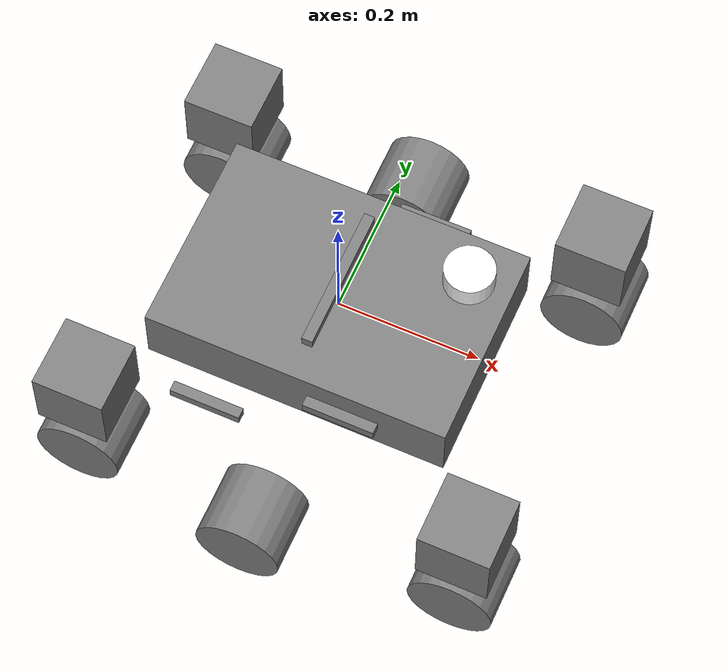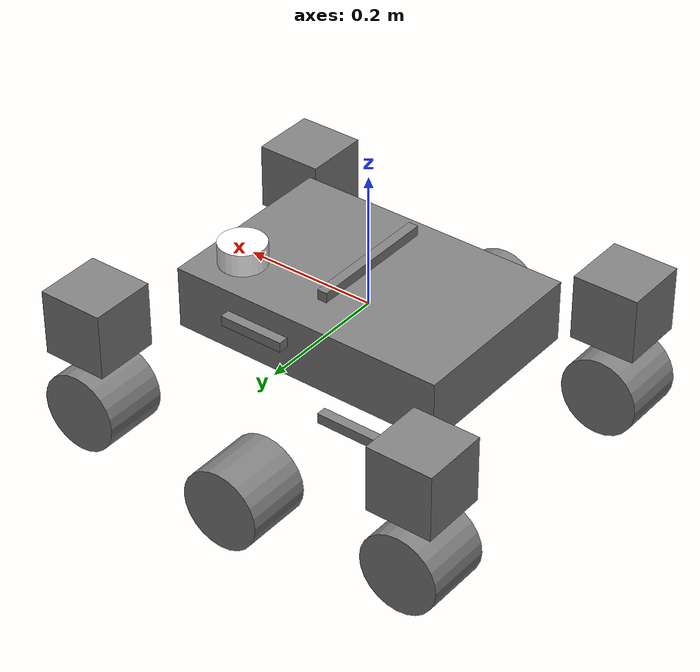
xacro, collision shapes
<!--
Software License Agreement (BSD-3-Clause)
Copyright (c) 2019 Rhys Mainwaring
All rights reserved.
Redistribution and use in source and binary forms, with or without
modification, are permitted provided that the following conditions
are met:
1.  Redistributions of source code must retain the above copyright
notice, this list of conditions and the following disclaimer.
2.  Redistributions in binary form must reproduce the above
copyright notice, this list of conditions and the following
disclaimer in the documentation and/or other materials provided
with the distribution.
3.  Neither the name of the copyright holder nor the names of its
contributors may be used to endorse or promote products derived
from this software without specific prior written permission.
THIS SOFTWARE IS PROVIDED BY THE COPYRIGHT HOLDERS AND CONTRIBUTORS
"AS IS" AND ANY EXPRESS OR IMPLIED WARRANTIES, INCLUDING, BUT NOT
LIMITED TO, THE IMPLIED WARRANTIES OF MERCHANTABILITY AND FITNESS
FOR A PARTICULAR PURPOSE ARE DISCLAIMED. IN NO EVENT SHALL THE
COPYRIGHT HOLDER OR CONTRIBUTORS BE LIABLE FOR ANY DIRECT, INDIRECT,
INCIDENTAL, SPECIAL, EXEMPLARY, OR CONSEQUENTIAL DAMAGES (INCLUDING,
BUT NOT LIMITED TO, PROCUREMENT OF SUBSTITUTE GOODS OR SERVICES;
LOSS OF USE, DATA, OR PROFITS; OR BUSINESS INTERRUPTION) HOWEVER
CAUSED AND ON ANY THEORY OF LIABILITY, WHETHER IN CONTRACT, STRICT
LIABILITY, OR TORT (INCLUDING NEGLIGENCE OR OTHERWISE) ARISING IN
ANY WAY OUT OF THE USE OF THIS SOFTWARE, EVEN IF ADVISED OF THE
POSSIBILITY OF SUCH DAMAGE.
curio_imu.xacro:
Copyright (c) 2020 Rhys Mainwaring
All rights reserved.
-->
<?xml version="1.0" ?>

<!-- Robot description for Curio, a Sawppy Rover robot.

 -->
<robot name="curio" xmlns:xacro="http://ros.org/wiki/xacro">
    <!-- Include macros for materials, inertials, sensors -->
    <xacro:include filename="$(find curio_description)/urdf/curio_materials.xacro"/>
    <xacro:include filename="$(find curio_description)/urdf/curio_inertials.xacro"/>
    <xacro:include filename="$(find curio_description)/urdf/curio_imu.xacro"/>
    <xacro:include filename="$(find curio_description)/urdf/curio_laser.xacro"/>

    <!-- Gazebo plugins -->
    <gazebo>
        <plugin name="gazebo_ros_control" filename="libgazebo_ros_control.so">
            <robotNamespace>/</robotNamespace>
            <robotSimType>gazebo_ros_control/DefaultRobotHWSim</robotSimType>
            <legacyModeNS>false</legacyModeNS>
        </plugin>

        <plugin name="gazebo_ros_joint_state_publisher" filename="libgazebo_ros_joint_state_publisher.so">
            <robotNamespace>/</robotNamespace>
            <jointName>
                left_rocker_joint, right_rocker_joint,
                left_bogie_joint, right_bogie_joint,
                diff_brace_joint,
                back_left_turnbuckle_joint, back_right_turnbuckle_joint,
                front_left_turnbuckle_joint, front_right_turnbuckle_joint
            </jointName>
            <updateRate>50</updateRate>
            <alwaysOn>true</alwaysOn>
        </plugin>
    </gazebo>

    <!-- Chassis -->
    <xacro:property name="makerbeam_width" value="0.015" />
    <xacro:property name="makerbeam_depth" value="0.015" />
    <xacro:property name="makerbeam_density" value="0.100" />

    <xacro:property name="body_box_length" value="0.425" />
    <xacro:property name="body_box_width" value="0.285" />
    <xacro:property name="body_box_depth" value="0.093" />
    <xacro:property name="body_box_mass" value="1.0" />

    <xacro:property name="front_rocker_arm_length" value="0.182" />
    <xacro:property name="back_rocker_arm_length" value="0.161" />
    <xacro:property name="front_rocker_arm_angle" value="0.3490658503988659" />
    <xacro:property name="back_rocker_arm_angle" value="-0.3141592653589793" />

    <xacro:property name="front_bogie_arm_length" value="0.122" />
    <xacro:property name="back_bogie_arm_length" value="0.117" />
    <xacro:property name="front_bogie_arm_angle" value="0.5201081170943103" />
    <xacro:property name="back_bogie_arm_angle" value="0.25656340004316625" />

    <xacro:property name="wheel_width" value="0.100" />
    <xacro:property name="wheel_radius" value="0.060" />

    <!-- The base link - the reference link for the entire model -->
    <link name="base_link">
        <visual>
            <origin rpy="0 0 0" xyz="0 0 0" />
            <geometry>
                <box size="0.01 0.01 0.01"/>
            </geometry>
            <material name="orange" />
        </visual>
        <collision>
            <origin rpy="0 0 0" xyz="0 0 0" />
            <geometry>
                <box size="0.01 0.01 0.01"/>
            </geometry>
        </collision>
        <xacro:solid_cuboid_inertial
            rpy="0 0 0" xyz="0 0 0"
            mass="0.01"
            x="0.01" y="0.01" z="0.01" />
    </link>

    <gazebo reference="base_link">
        <material>Gazebo/Orange</material>
    </gazebo>

    <link name="body_box_link">
        <visual>
            <origin rpy="0 0 0" xyz="0 0 0" />
            <geometry>
                <mesh filename="package://curio_description/meshes/bases/body_box.stl" />
            </geometry>
            <material name="dark_gray" />
        </visual>
        <collision>
            <origin rpy="0 0 0" xyz="0 0 0" />
            <geometry>
                <box size="${body_box_length} ${body_box_width} ${body_box_depth}"/>
            </geometry>
        </collision>
        <xacro:solid_cuboid_inertial
            rpy="0 0 0" xyz="0 0 0"
            mass="${body_box_mass}"
            x="${body_box_length}" y="${body_box_width}" z="${body_box_depth}" />
    </link>

    <gazebo reference="body_box_link">
        <material>Gazebo/DarkGray</material>
    </gazebo>

    <joint name="body_box_joint" type="fixed">
        <origin rpy="0 0 0" xyz="0 0 0"/>
        <parent link="base_link" />
        <child link="body_box_link" />
    </joint>

    <gazebo reference="body_box_joint">
    </gazebo>

    <!-- Differential -->
    <link name="diff_brace_link">
        <visual>
            <origin rpy="0 0 0" xyz="0 0 0" />
            <geometry>
                <mesh filename="package://curio_description/meshes/bases/differential.stl" />
            </geometry>
            <material name="dark_gray" />
        </visual>
        <collision>
            <origin rpy="0 0 ${math_pi_over_2}" xyz="0 0 0" />
            <geometry>
                <box size="0.200 0.015 0.015"/>
            </geometry>
        </collision>
        <xacro:solid_cuboid_inertial
            rpy="0 0 ${math_pi_over_2}" xyz="0 0 0"
            mass="0.1"
            x="0.2" y="0.015" z="0.015" />
    </link>

    <gazebo reference="diff_brace_link">
        <material>Gazebo/DarkGray</material>
    </gazebo>

    <joint name="diff_brace_joint" type="revolute">
        <origin rpy="0 0 0" xyz="0 0 0.0681"/>
        <axis xyz="0 0 1" />
        <limit
            lower="${-math_pi_over_4}"
            upper="${math_pi_over_4}"
            effort="100.0"
            velocity="100.0" />
        <parent link="base_link" />
        <child link="diff_brace_link" />
    </joint>

    <gazebo reference="diff_brace_joint">
        <provideFeedback>true</provideFeedback>
        <implicitSpringDamper>true</implicitSpringDamper>
    </gazebo>

    <xacro:macro name="turnbuckle_assembly" params="lat_label reflect">
        <gazebo>
            <link name="${lat_label}_turnbuckle_link">
                <pose>0.035 ${reflect * 0.17} 0.07 0 0 0</pose>
                <visual name="${lat_label}_turnbuckle_visual">
                    <pose>0 0 0 0 0 0</pose>
                    <geometry>
                        <mesh>
                            <uri>package://curio_description/meshes/bases/turnbuckle.stl</uri>
                        </mesh>
                    </geometry>
                    <material>
                        <script>
                            <name>Gazebo/Blue</name>
                        </script>
                    </material>
                </visual>
                <collision name="${lat_label}_turnbuckle_collision">
                    <pose>0 0 0 0 ${math_pi_over_2} 0</pose>
                    <geometry>
                        <cylinder>
                            <length>0.07</length>
                            <radius>0.0025</radius>
                        </cylinder>
                    </geometry>
                </collision>
                <inertial>
                    <mass>0.01</mass>
                    <inertia>
                        <ixx>0.0001</ixx>
                        <ixy>0</ixy>
                        <ixz>0</ixz>
                        <iyy>0.0001</iyy>
                        <iyz>0</iyz>
                        <izz>0.0001</izz>
                    </inertia>
                </inertial>
            </link>

            <joint name="back_${lat_label}_turnbuckle_joint" type="ball">
                <pose>-0.035 0 0 0 0 0</pose>
                <parent>diff_brace_link</parent>
                <child>${lat_label}_turnbuckle_link</child>
            </joint>

            <joint name="front_${lat_label}_turnbuckle_joint" type="ball">
                <pose>0.035 0 0 0 0 0</pose>
                <parent>${lat_label}_rocker_link</parent>
                <child>${lat_label}_turnbuckle_link</child>
            </joint>
        </gazebo>
    </xacro:macro>
    <xacro:turnbuckle_assembly lat_label="left" reflect="1"/>
    <xacro:turnbuckle_assembly lat_label="right" reflect="-1"/>

    <!-- Rocker -->
    <xacro:macro name="rocker_link" params="lat_label reflect">
        <link name="${lat_label}_rocker_link">
            <visual>
                <origin rpy="0 0 0" xyz="0 0 0" />
                <geometry>
                    <mesh filename="package://curio_description/meshes/bases/${lat_label}_rocker_asm.stl" />
                </geometry>
                <material name="dark_gray" />
            </visual>
            <collision>
                <origin rpy="0 0 0" xyz="0 0 0" />
                <geometry>
                    <box size="0.1 0.015 0.015"/>
                </geometry>
            </collision>
            <xacro:solid_cuboid_inertial
                rpy="0 0 0" xyz="0 0 0"
                mass="0.25"
                x="0.1" y="0.015" z="0.015" />
        </link>

        <gazebo reference="${lat_label}_rocker_link">
            <material>Gazebo/DarkGray</material>
        </gazebo>

    </xacro:macro>
    <xacro:rocker_link lat_label="left" reflect="1"/>
    <xacro:rocker_link lat_label="right" reflect="-1"/>

    <!-- Rocker Joint  -->
    <xacro:macro name="rocker_joint" params="lat_label reflect">
        <joint name="${lat_label}_rocker_joint" type="continuous">
            <origin rpy="0 0 0" xyz="0.071 ${reflect * 0.155} 0.0118"/>
            <axis xyz="0 1 0" />
            <limit
                lower="${-math_pi_over_4}"
                upper="${math_pi_over_4}"
                effort="100.0"
                velocity="100.0" />
            <parent link="base_link" />
            <child link="${lat_label}_rocker_link" />
        </joint>

        <gazebo reference="${lat_label}_rocker_joint">
            <provideFeedback>true</provideFeedback>
            <implicitSpringDamper>true</implicitSpringDamper>
        </gazebo>
    </xacro:macro>
    <!-- Fixed Rocker Joint (for testing)  -->
    <xacro:rocker_joint lat_label="left" reflect="1"/>
    <xacro:rocker_joint lat_label="right" reflect="-1"/>

    <xacro:macro name="steer_link" params="lon_label lat_label reflect">
        <link name="${lon_label}_${lat_label}_steer_link">
            <visual>
                <origin rpy="0 0 0" xyz="0 0 0" />
                <geometry>
                    <mesh filename="package://curio_description/meshes/bases/${lon_label}_${lat_label}_steering_asm.stl" />
                </geometry>
                <material name="dark_gray" />
            </visual>
            <collision>
                <origin rpy="0 0 0" xyz="0 0 0" />
                <geometry>
                    <box size="0.1 0.1 0.1"/>
                </geometry>
            </collision>
            <xacro:solid_cuboid_inertial
                rpy="0 0 0" xyz="0 0 0"
                mass="0.25"
                x="0.1" y="0.1" z="0.1" />
        </link>

        <gazebo reference="${lon_label}_${lat_label}_steer_link">
            <material>Gazebo/DarkGray</material>
        </gazebo>
    </xacro:macro>
    <xacro:steer_link lon_label="front" lat_label="left" reflect="1"/>
    <xacro:steer_link lon_label="front" lat_label="right" reflect="-1"/>

    <xacro:macro name="front_steer_joint" params="lat_label reflect">
        <joint name="front_${lat_label}_steer_joint" type="continuous">
            <origin rpy="0 0 0" xyz="0.2116 ${reflect * 0.075} -0.0279"/>
            <axis xyz="0 0 1" />
            <parent link="${lat_label}_rocker_link" />
            <child link="front_${lat_label}_steer_link" />
        </joint>

        <transmission name="front_${lat_label}_steer_transmission" >
            <type>transmission_interface/SimpleTransmission</type>
            <actuator name="front_${lat_label}_steer_actuator">
                <mechanicalReduction>1</mechanicalReduction>
            </actuator>
            <joint name="front_${lat_label}_steer_joint">
                <hardwareInterface>hardware_interface/PositionJointInterface</hardwareInterface>
            </joint>
        </transmission>

        <gazebo reference="front_${lat_label}_steer_joint">
            <provideFeedback>true</provideFeedback>
        </gazebo>
    </xacro:macro>
    <xacro:front_steer_joint lat_label="left" reflect="1"/>
    <xacro:front_steer_joint lat_label="right" reflect="-1"/>

    <xacro:macro name="wheel_link" params="lon_label lat_label reflect">
        <link name="${lon_label}_${lat_label}_wheel_link">
            <visual>
                <origin rpy="${reflect * math_pi_over_2} 0 0" xyz="0 0 0" />
                <geometry>
                    <mesh filename="package://curio_description/meshes/wheels/wheel_asm.stl" />
                </geometry>
                <material name="dark_gray" />
            </visual>
            <collision>
                <origin rpy="${reflect * math_pi_over_2} 0 0" xyz="0 0 0" />
                <geometry>
                    <cylinder length="${wheel_width}" radius="${wheel_radius}" />
                </geometry>
            </collision>
            <xacro:solid_cylinder_inertial
                rpy="0 0 0" xyz="0 0 0"
                mass="0.25"
                radius="${wheel_radius}" length="${wheel_width}" />
        </link>

        <gazebo reference="${lon_label}_${lat_label}_wheel_link">
            <material>Gazebo/DarkGray</material>
        </gazebo>
    </xacro:macro>
    <xacro:wheel_link lon_label="front" lat_label="left" reflect="1"/>
    <xacro:wheel_link lon_label="front" lat_label="right" reflect="-1"/>

    <xacro:macro name="steer_wheel_joint" params="lon_label lat_label reflect">
        <joint name="${lon_label}_${lat_label}_wheel_joint" type="continuous">
            <origin rpy="0 0 0" xyz="0 0 -0.132"/>
            <axis xyz="0 1 0" />
            <parent link="${lon_label}_${lat_label}_steer_link" />
            <child link="${lon_label}_${lat_label}_wheel_link" />
        </joint>

        <transmission name="${lon_label}_${lat_label}_wheel_transmission" >
            <type>transmission_interface/SimpleTransmission</type>
            <actuator name="${lon_label}_${lat_label}_wheel_actuator">
                <mechanicalReduction>1</mechanicalReduction>
            </actuator>
            <joint name="${lon_label}_${lat_label}_wheel_joint">
                <hardwareInterface>hardware_interface/VelocityJointInterface</hardwareInterface>
            </joint>
        </transmission>

        <gazebo reference="${lon_label}_${lat_label}_wheel_joint">
            <provideFeedback>true</provideFeedback>
        </gazebo>
    </xacro:macro>
    <xacro:steer_wheel_joint lon_label="front" lat_label="left" reflect="1"/>
    <xacro:steer_wheel_joint lon_label="front" lat_label="right" reflect="-1"/>

    <!-- Bogie -->
    <xacro:macro name="bogie_link" params="lat_label reflect">
        <link name="${lat_label}_bogie_link">
            <visual>
                <origin rpy="0 0 0" xyz="0 0 0" />
                <geometry>
                    <mesh filename="package://curio_description/meshes/bases/${lat_label}_bogie_asm.stl" />
                </geometry>
                <material name="dark_gray" />
            </visual>
            <collision>
                <origin rpy="0 0 0" xyz="0 0 0" />
                <geometry>
                    <box size="0.1 0.015 0.015"/>
                </geometry>
            </collision>
            <xacro:solid_cuboid_inertial
                rpy="0 0 0" xyz="0 0 0"
                mass="0.25"
                x="0.1" y="0.015" z="0.015" />
        </link>

        <gazebo reference="${lat_label}_bogie_link">
            <material>Gazebo/DarkGray</material>
        </gazebo>
    </xacro:macro>
    <xacro:bogie_link lat_label="left" reflect="1"/>
    <xacro:bogie_link lat_label="right" reflect="-1"/>

    <!-- Bogie Joint  -->
    <xacro:macro name="bogie_joint" params="lat_label reflect">
        <joint name="${lat_label}_bogie_joint" type="revolute">
            <origin rpy="0 0 0" xyz="-0.181 ${reflect * 0.025} -0.062"/>
            <axis xyz="0 1 0" />
            <limit
                lower="${-math_pi_over_4}"
                upper="${math_pi_over_4}"
                effort="100.0"
                velocity="100.0" />
            <parent link="${lat_label}_rocker_link" />
            <child link="${lat_label}_bogie_link" />
        </joint>

        <gazebo reference="${lat_label}_bogie_joint">
            <provideFeedback>true</provideFeedback>
            <implicitSpringDamper>true</implicitSpringDamper>
        </gazebo>
    </xacro:macro>
    <!-- Fixed Bogie Joint  (for testing) -->
    <xacro:bogie_joint lat_label="left" reflect="1"/>
    <xacro:bogie_joint lat_label="right" reflect="-1"/>

    <xacro:wheel_link lon_label="mid" lat_label="left" reflect="1"/>
    <xacro:wheel_link lon_label="mid" lat_label="right" reflect="-1"/>

    <xacro:macro name="mid_wheel_joint" params="lat_label reflect">
        <joint name="mid_${lat_label}_wheel_joint" type="continuous">
            <origin rpy="0 0 0" xyz="0.1063 ${reflect * 0.0929} -0.0959"/>
            <axis xyz="0 1 0" />
            <parent link="${lat_label}_bogie_link" />
            <child link="mid_${lat_label}_wheel_link" />
        </joint>

        <transmission name="mid_${lat_label}_wheel_transmission" >
            <type>transmission_interface/SimpleTransmission</type>
            <actuator name="mid_${lat_label}_wheel_actuator">
                <mechanicalReduction>1</mechanicalReduction>
            </actuator>
            <joint name="mid_${lat_label}_wheel_joint">
                <hardwareInterface>hardware_interface/VelocityJointInterface</hardwareInterface>
            </joint>
        </transmission>

        <gazebo reference="mid_${lat_label}_wheel_joint">
            <provideFeedback>true</provideFeedback>
        </gazebo>
    </xacro:macro>
    <xacro:mid_wheel_joint lat_label="left" reflect="1"/>
    <xacro:mid_wheel_joint lat_label="right" reflect="-1"/>

    <xacro:steer_link lon_label="back" lat_label="left" reflect="1"/>
    <xacro:steer_link lon_label="back" lat_label="right" reflect="-1"/>

    <xacro:macro name="back_steer_joint" params="lat_label reflect">
        <joint name="back_${lat_label}_steer_joint" type="continuous">
            <origin rpy="0 0 0" xyz="-0.149 ${reflect * 0.05} 0.0338"/>
            <axis xyz="0 0 1" />
            <parent link="${lat_label}_bogie_link" />
            <child link="back_${lat_label}_steer_link" />
        </joint>

        <transmission name="back_${lat_label}_steer_transmission" >
            <type>transmission_interface/SimpleTransmission</type>
            <actuator name="back_${lat_label}_steer_actuator">
                <mechanicalReduction>1</mechanicalReduction>
            </actuator>
            <joint name="back_${lat_label}_steer_joint">
                <hardwareInterface>hardware_interface/PositionJointInterface</hardwareInterface>
            </joint>
        </transmission>

        <gazebo reference="back_${lat_label}_steer_joint">
            <provideFeedback>true</provideFeedback>
        </gazebo>
    </xacro:macro>
    <xacro:back_steer_joint lat_label="left" reflect="1"/>
    <xacro:back_steer_joint lat_label="right" reflect="-1"/>

    <xacro:wheel_link lon_label="back" lat_label="left" reflect="1"/>
    <xacro:wheel_link lon_label="back" lat_label="right" reflect="-1"/>

    <xacro:steer_wheel_joint lon_label="back" lat_label="left" reflect="1"/>
    <xacro:steer_wheel_joint lon_label="back" lat_label="right" reflect="-1"/>

    <!-- IMU  -->
    <xacro:imu_link />
    <xacro:imu_joint x="0.110" y="-0.043" z="0.005" yaw="0" />

    <!-- Laser Scan Sensor -->
    <xacro:laser_link />
    <xacro:laser_joint x="0.152" y="0.078" z="0.050" />

</robot>

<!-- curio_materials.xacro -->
<!--  xacro macros for robot materials.
 -->
<robot name="curio_materials" xmlns:xacro="http://ros.org/wiki/xacro">
   <material name="red">
        <color rgba="0.8 0 0 1"/>
    </material>

    <material name="green">
        <color rgba="0 0.8 0 1"/>
    </material>

    <material name="blue">
        <color rgba="0 0 0.8 1"/>
    </material>

    <material name="orange">
        <color rgba="0.8 0.25 0 1"/>
    </material>

    <material name="black">
        <color rgba="0 0 0 1"/>
    </material>

    <material name="dark_gray">
        <color rgba="0.5 0.5 0.5 1"/>
    </material>

    <material name="gray">
        <color rgba="0.753 0.753 0.753 1"/>
    </material>

    <material name="silver">
        <color rgba="0.88 0.88 0.88 1"/>
    </material>

    <material name="white">
        <color rgba="1 1 1 1"/>
    </material>
</robot>

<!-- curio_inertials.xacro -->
<!--  xacro macros for intertials.

    Define xacro macros for math constants and inertials:

    - solid cuboid
    - solid cylinder
    - null (a placeholder inertial for logical link elements)
 -->
<robot name="curio_inertials" xmlns:xacro="http://ros.org/wiki/xacro">

    <!-- Math constants -->
    <xacro:property name="math_pi"        value="3.141592653589793" />
    <xacro:property name="math_pi_over_2" value="1.5707963267948966" />
    <xacro:property name="math_pi_over_4" value="0.785398163397448" />

    <!-- Inertial for solid cuboid with dimensions x y z  -->
    <xacro:macro name="solid_cuboid_inertial" params="rpy xyz mass x y z">
        <inertial>
            <origin rpy="${rpy}" xyz="${xyz}"/>
            <mass value="${mass}" />
            <inertia
                ixx="${mass * (y * y + z * z) / 12.0}" ixy="0.0" ixz="0.0"
                iyy="${mass * (x * x + z * z) / 12.0}" iyz="0.0"
                izz="${mass * (x * x + y * y) / 12.0}" />
        </inertial>
    </xacro:macro>

    <!-- Inertial for solid cylinder with radius and length aligned to z-axis  -->
    <xacro:macro name="solid_cylinder_inertial" params="rpy xyz mass radius length">
        <inertial>
            <origin rpy="${rpy}" xyz="${xyz}"/>
            <mass value="${mass}" />
            <inertia
                ixx="${mass * (3.0 * radius * radius + length * length) / 12.0}" ixy="0.0" ixz="0.0"
                iyy="${mass * (3.0 * radius * radius + length * length) / 12.0}" iyz="0.0"
                izz="${mass * (radius * radius) / 2.0}" />
        </inertial>
    </xacro:macro>

    <!-- A null inertial - used in placeholder links to esure the model will work in Gazebo -->
    <xacro:macro name="null_inertial">
        <inertial>
            <mass value="0.001"/>
            <inertia ixx="0.001" ixy="0" ixz="0" iyy="0.001" iyz="0" izz="0.001"/>
        </inertial>
    </xacro:macro>
</robot>

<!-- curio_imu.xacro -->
<!--  xacro macros for IMU sensor (dimensions for SparkFun BNO080).

 -->
<robot name="curio_imu" xmlns:xacro="http://ros.org/wiki/xacro">
    <xacro:macro name="imu_link">
        <link name="imu">
            <visual>
                <origin rpy="0 0 0" xyz="0 0 0" />
                <geometry>
                    <box size="0.031 0.026 0.005"/>
                </geometry>
                <material name="green" />
            </visual>
            <collision>
                <origin rpy="0 0 0" xyz="0 0 0" />
                <geometry>
                    <box size="0.031 0.026 0.005"/>
                </geometry>
            </collision>
            <xacro:solid_cuboid_inertial rpy="0 0 0" xyz="0 0 0"
                mass="0.004" x="0.031" y="0.026" z="0.005" />
        </link>

        <gazebo reference="imu">
            <material>Gazebo/Green</material>

            <sensor type="imu" name="imu_sensor">
                <always_on>true</always_on>
                <update_rate>50</update_rate>
                <visualize>true</visualize>
                <topic>sensors/imu</topic>
                <pose>0 0 0 0 0 0</pose>
                <imu>
                    <topic>sensors/imu</topic>
                </imu>
                <plugin filename="libgazebo_ros_imu_sensor.so" name="imu_plugin">
                    <gaussianNoise>0.0</gaussianNoise>
                    <always_on>true</always_on>
                    <updateRateHz>50</updateRateHz>
                    <topicName>sensors/imu</topicName>
                    <frameName>imu</frameName>
                    <bodyName>imu</bodyName>
                    <xyzOffset>0 0 0</xyzOffset>
                    <rpyOffset>0 0 0</rpyOffset>
                </plugin>
            </sensor>
        </gazebo>
    </xacro:macro>

    <xacro:macro name="imu_joint" params="x y z yaw" >
        <joint name="imu_joint" type="fixed">
            <origin rpy="0 0 ${yaw}" xyz="${x} ${y} ${z}"/>
            <parent link="base_link" />
            <child link="imu" />
        </joint>

        <gazebo reference="imu_joint">
            <preserveFixedJoint>true</preserveFixedJoint>
        </gazebo>
    </xacro:macro>
</robot>

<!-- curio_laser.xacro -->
<!--  xacro macros for laser sensor (rplidar_a1).

 -->
<robot name="curio_laser" xmlns:xacro="http://ros.org/wiki/xacro">
    <xacro:macro name="laser_link">
        <link name="laser">
            <visual>
                <origin rpy="0 0 0" xyz="0 0 0" />
                <geometry>
                    <mesh filename="package://curio_description/meshes/sensors/rplidar_a1_assembly_low.stl" />
                </geometry>
                <material name="white" />
            </visual>
            <collision>
                <origin rpy="0 0 0" xyz="0 0 0" />
                <geometry>
                    <cylinder length="0.06" radius="0.035"/>
                </geometry>
            </collision>
            <xacro:solid_cylinder_inertial rpy="0 0 0" xyz="0 0 0"
                mass="0.150" length="0.06" radius="0.035" />
        </link>

        <gazebo reference="laser">
            <material>Gazebo/White</material>

            <sensor type="gpu_ray" name="laser_sensor">
                <always_on>true</always_on>
                <update_rate>5</update_rate>
                <visualize>false</visualize>
                <topic>sensors/laser</topic>
                <pose>0 0 0.045 0 0 0</pose>
                <ray>
                    <scan>
                        <horizontal>
                            <samples>360</samples>
                            <resolution>1</resolution>
                            <min_angle>-${math_pi}/2</min_angle>
                            <max_angle>${math_pi}/2</max_angle>
                        </horizontal>
                        <vertical>
                            <samples>1</samples>
                            <resolution>1</resolution>
                            <min_angle>0</min_angle>
                            <max_angle>0</max_angle>
                        </vertical>
                    </scan>
                    <range>
                        <min>0.1</min>
                        <max>12.0</max>
                        <resolution>0.05</resolution>
                    </range>
                    <noise>
                        <type>gaussian</type>
                        <mean>0.0</mean>
                        <stddev>0.01</stddev>
                    </noise>
                </ray>
                <plugin filename="libgazebo_ros_gpu_laser.so" name="gazebo_ros_laser">
                    <frameName>laser</frameName>
                    <topicName>sensors/laser</topicName>
                </plugin>
            </sensor>
        </gazebo>
    </xacro:macro>

    <xacro:macro name="laser_joint" params="x y z" >
        <joint name="laser_joint" type="fixed">
            <origin rpy="0 0 0" xyz="${x} ${y} ${z}"/>
            <parent link="base_link" />
            <child link="laser" />
        </joint>

        <gazebo reference="laser_joint">
            <preserveFixedJoint>true</preserveFixedJoint>
        </gazebo>
    </xacro:macro>
</robot>
